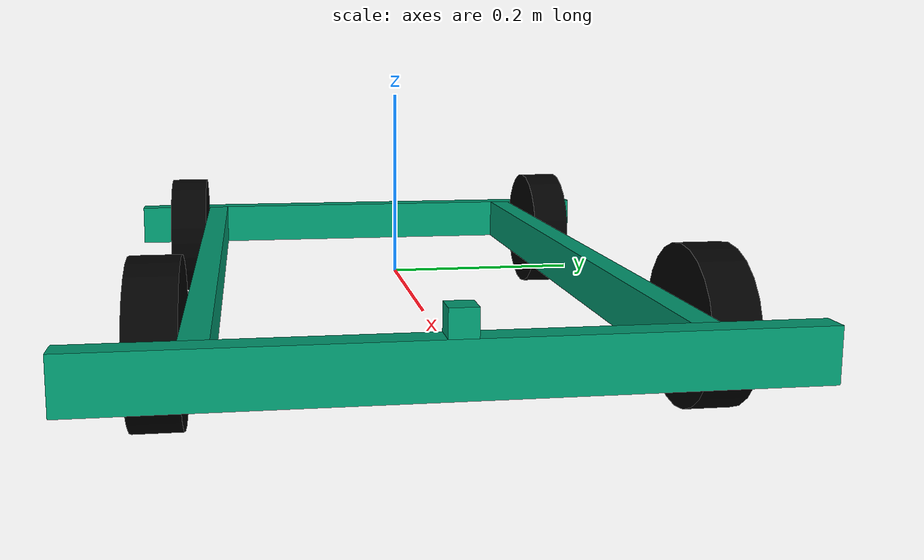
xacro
<?xml version="1.0"?>
<robot xmlns:xacro="http://www.ros.org/wiki/xacro">
  <!-- Inertial Macros -->
  <xacro:macro name="inertial_box" params="mass x y z">
    <inertial>
      <mass value="${mass}"/>
      <inertia ixx="${(1/12) * mass * (y*y+z*z)}" ixy="0.0" ixz="0.0"
               iyy="${(1/12) * mass * (x*x+z*z)}" iyz="0.0"
               izz="${(1/12) * mass * (x*x+y*y)}"/>
    </inertial>
  </xacro:macro>

  <xacro:macro name="inertial_cylinder" params="mass length radius">
    <inertial>
      <mass value="${mass}"/>
      <inertia ixx="${(1/12) * mass * (3*radius*radius + length*length)}" ixy="0.0" ixz="0.0"
               iyy="${(1/12) * mass * (3*radius*radius + length*length)}" iyz="0.0"
               izz="${(1/2) * mass * (radius*radius)}"/>
    </inertial>
  </xacro:macro>

  <xacro:property name="sidebar_length" value="0.7493"/>
  <xacro:property name="sidebar_width" value="0.0254"/>
  <xacro:property name="sidebar_height" value="0.0508"/>
  <xacro:property name="sidebar_y_offset" value="0.20955"/>

  <xacro:property name="frontbar_length" value="0.635"/>
  <xacro:property name="frontbar_width" value="0.0254"/>
  <xacro:property name="frontbar_height" value="0.0508"/>
  <xacro:property name="frontbar_x_offset" value="0.38735"/>

  <xacro:property name="wheel_radius" value="0.0762"/>
  <xacro:property name="wheel_width" value="0.045085"/>
  <xacro:property name="wheel_mass" value="0.36196671"/>
  <xacro:property name="wheel_x_offset" value="0.28575"/>
  <xacro:property name="wheel_y_offset" value="0.2447925"/>

  <xacro:property name="robot_mass" value="1.0"/>

  <!-- Macro to create the side bars -->
  <xacro:macro name="sidebar" params="prefix reflect">
    <visual name="${prefix}_side_visual">
      <origin xyz="0 ${sidebar_y_offset*reflect} 0" rpy="0 0 0"/>
      <geometry>
        <box size="${sidebar_length} ${sidebar_width} ${sidebar_height}"/>
      </geometry>
    </visual>
    <collision name="${prefix}_side_collision">
      <origin xyz="0 ${sidebar_y_offset*reflect} 0" rpy="0 0 0"/>
      <geometry>
        <box size="${sidebar_length} ${sidebar_width} ${sidebar_height}"/>
      </geometry>
    </collision>
  </xacro:macro>

  <!-- Macro to create the front/rear bars -->
  <xacro:macro name="frontbar" params="prefix reflect">
    <visual name="${prefix}_visual">
      <origin xyz="${frontbar_x_offset*reflect} 0 0" rpy="0 0 1.5708"/>
      <geometry>
        <box size="${frontbar_length} ${frontbar_width} ${frontbar_height}"/>
      </geometry>
    </visual>
    <collision name="${prefix}_collision">
      <origin xyz="${frontbar_x_offset*reflect} 0 0" rpy="0 0 1.5708"/>
      <geometry>
        <box size="${frontbar_length} ${frontbar_width} ${frontbar_height}"/>
      </geometry>
    </collision>
  </xacro:macro>

  <!-- Macro to create the wheels -->
  <xacro:macro name="wheel" params="prefix suffix reflectx reflecty">
    <link name="${prefix}_${suffix}_wheel">
      <xacro:inertial_cylinder mass="${wheel_mass}" length="${wheel_width}" radius="${wheel_radius}"/>
      <visual>
        <geometry>
          <cylinder length="${wheel_width}" radius="${wheel_radius}"/>
        </geometry>
       <material name="black"/>
      </visual>
      <collision>
        <geometry>
          <cylinder length="${wheel_width}" radius="${wheel_radius}"/>
        </geometry>
      </collision>
    </link>

    <!-- Joint connecting this wheel to the base_link -->
    <joint name="${prefix}_${suffix}_joint" type="continuous">
      <axis xyz="0 0 1" rpy="0 0 0"/>
      <parent link="base_link"/>
      <child link="${prefix}_${suffix}_wheel"/>
      <origin xyz="${reflectx*wheel_x_offset} ${reflecty*wheel_y_offset} 0.0"
              rpy="${-reflecty*pi/2} 0 0"/>
    </joint>
  </xacro:macro>

  <xacro:macro name="mimic_wheel" params="prefix suffix reflectx reflecty">
    <link name="${prefix}_${suffix}_wheel">
      <xacro:inertial_cylinder mass="${wheel_mass}" length="${wheel_width}" radius="${wheel_radius}"/>
      <visual>
        <geometry>
          <cylinder length="${wheel_width}" radius="${wheel_radius}"/>
        </geometry>
       <material name="black"/>
      </visual>
      <collision>
        <geometry>
          <cylinder length="${wheel_width}" radius="${wheel_radius}"/>
        </geometry>
      </collision>
    </link>

    <!-- Joint connecting this wheel to the base_link -->
    <joint name="${prefix}_${suffix}_joint" type="continuous">
      <axis xyz="0 0 1" rpy="0 0 0"/>
      <parent link="base_link"/>
      <child link="${prefix}_${suffix}_wheel"/>
      <origin xyz="${reflectx*wheel_x_offset} ${reflecty*wheel_y_offset} 0.0"
              rpy="${-reflecty*pi/2} 0 0"/>
      <mimic joint="${prefix}_front_joint" multiplier="1.0" offset="0.0"/>
    </joint>
  </xacro:macro>

  <material name="black">
    <color rgba="0 0 0 1"/>
  </material>

  <!-- Base Link -->
  <link name="base_link"/>

  <!-- Base Footprint Link -->
  <link name="base_footprint"/>

  <!-- Attach Base Link to Base Footprint -->
  <joint name="base_footprint_joint" type="fixed">
    <parent link="base_link"/>
    <child link="base_footprint"/>
    <origin xyz="0 0 0" rpy="0 0 0"/>
  </joint>

  <!-- Chassis represented by a 50 lbs cuboid (max weight limit) -->
  <link name="chassis">
    <!-- Left/Right sidebars -->
    <xacro:sidebar prefix="left" reflect="1"/>
    <xacro:sidebar prefix="right" reflect="-1"/>

    <!-- Front/Rear bars -->
    <xacro:frontbar prefix="front" reflect="1"/>
    <xacro:frontbar prefix="rear" reflect="-1"/>

    <!--
      For visualization purposes a small cube will be added to the front of the
      robot.  No collision is used because the real robot does not have this
      cube.
    -->
    <visual name="cube_visual">
      <geometry>
        <box size="0.0254 0.0254 0.0254"/>
      </geometry>
      <origin rpy="0 0 0" xyz="0.38735 0 0.0381"/>
    </visual>

    <xacro:inertial_box mass="${robot_mass}" x="${sidebar_length+2*frontbar_width}" y="${frontbar_length}" z="${sidebar_height}"/>
  </link>

  <!-- Attach chassis to Base Link -->
  <joint name="chassis_joint" type="fixed">
    <parent link="base_link"/>
    <child link="chassis"/>
  </joint>

  <!-- Wheels -->
  <xacro:wheel prefix="left" suffix="front" reflectx="1" reflecty="1"/>
  <xacro:mimic_wheel prefix="left" suffix="rear" reflectx="-1" reflecty="1"/>

  <xacro:wheel prefix="right" suffix="front" reflectx="1" reflecty="-1"/>
  <xacro:mimic_wheel prefix="right" suffix="rear" reflectx="-1" reflecty="-1"/>
</robot>
